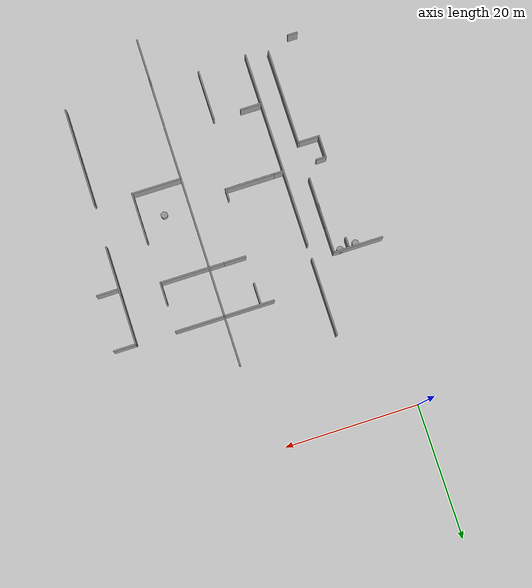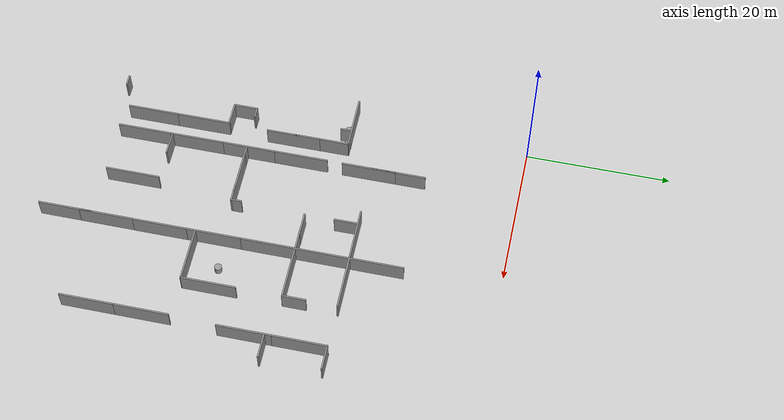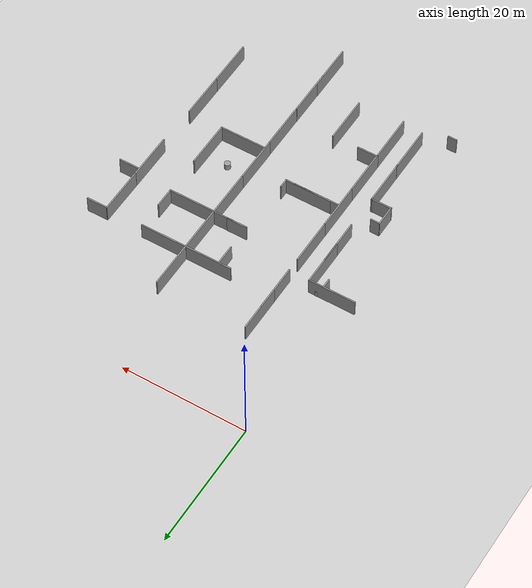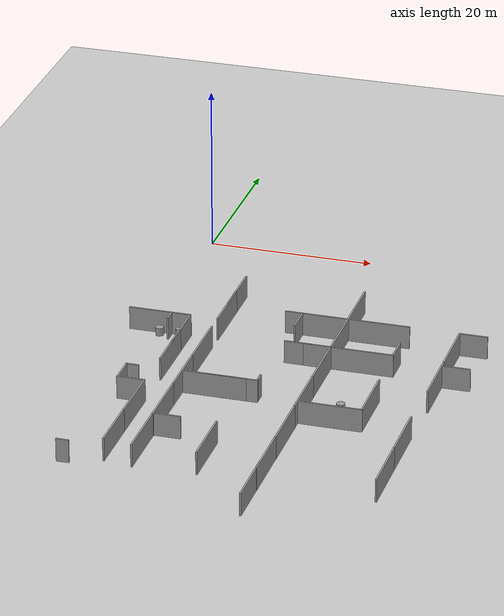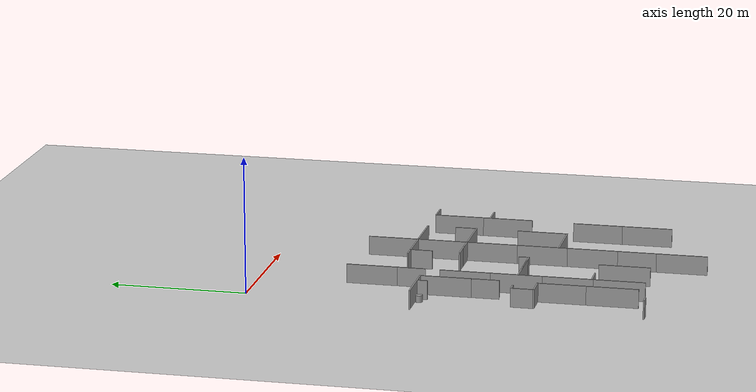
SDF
<sdf version="1.7">
 <world name="default">
  <model name="ground_plane">
   <static>1</static>
   <link name="link">
    <collision name="collision">
     <geometry><plane><normal>0 0 1</normal><size>100 100</size></plane></geometry>
     <surface>
      <contact><collide_bitmask>65535</collide_bitmask></contact>
      <friction><ode><mu>100</mu><mu2>50</mu2></ode></friction>
     </surface>
    </collision>
    <visual name="visual">
     <cast_shadows>0</cast_shadows>
     <geometry><plane><normal>0 0 1</normal><size>100 100</size></plane></geometry>
     <material>
      <script><uri>file://media/materials/scripts/gazebo.material</uri><name>Gazebo/Grey</name></script>
     </material>
    </visual>
   </link>
  </model>
  <model name="grey_wall_clone_0_clone_0_clone_0">
   <static>1</static>
   <link name="link">
    <pose>0 0 1.4 0 -0 0</pose>
    <collision name="collision"><geometry><box><size>7.5 0.2 2.8</size></box></geometry></collision>
    <visual name="visual">
     <cast_shadows>0</cast_shadows>
     <geometry><box><size>7.5 0.2 2.8</size></box></geometry>
     <material>
      <script>
       <uri>model://grey_wall/materials/scripts</uri>
       <uri>model://grey_wall/materials/textures</uri>
       <name>vrc/grey_wall</name>
      </script>
     </material>
    </visual>
   </link>
   <pose>1.22377 -24.4572 0 0 -0 0</pose>
  </model>
  <model name="grey_wall_clone_2_clone_2_clone_0">
   <static>1</static>
   <link name="link">
    <pose>0 0 1.4 0 -0 0</pose>
    <collision name="collision"><geometry><box><size>7.5 0.2 2.8</size></box></geometry></collision>
    <visual name="visual">
     <cast_shadows>0</cast_shadows>
     <geometry><box><size>7.5 0.2 2.8</size></box></geometry>
     <material>
      <script>
       <uri>model://grey_wall/materials/scripts</uri>
       <uri>model://grey_wall/materials/textures</uri>
       <name>vrc/grey_wall</name>
      </script>
     </material>
    </visual>
   </link>
   <pose>4.8782 -28.183 0 0 0 -1.5708</pose>
  </model>
  <model name="grey_wall_clone_2_clone_2_clone_1">
   <static>1</static>
   <link name="link">
    <pose>0 0 1.4 0 -0 0</pose>
    <collision name="collision"><geometry><box><size>7.5 0.2 2.8</size></box></geometry></collision>
    <visual name="visual">
     <cast_shadows>0</cast_shadows>
     <geometry><box><size>7.5 0.2 2.8</size></box></geometry>
     <material>
      <script>
       <uri>model://grey_wall/materials/scripts</uri>
       <uri>model://grey_wall/materials/textures</uri>
       <name>vrc/grey_wall</name>
      </script>
     </material>
    </visual>
   </link>
   <pose>4.89039 -32.2157 0 0 0 -1.5708</pose>
  </model>
  <model name="grey_wall_clone_2_clone_2_clone_1_clone">
   <static>1</static>
   <link name="link">
    <pose>0 0 1.4 0 -0 0</pose>
    <collision name="collision"><geometry><box><size>7.5 0.2 2.8</size></box></geometry></collision>
    <visual name="visual">
     <cast_shadows>0</cast_shadows>
     <geometry><box><size>7.5 0.2 2.8</size></box></geometry>
     <material>
      <script>
       <uri>model://grey_wall/materials/scripts</uri>
       <uri>model://grey_wall/materials/textures</uri>
       <name>vrc/grey_wall</name>
      </script>
     </material>
    </visual>
   </link>
   <pose>4.79063 -45.0974 0 0 0 -1.5708</pose>
  </model>
  <model name="grey_wall_clone_2_clone_2_clone_1_clone_0">
   <static>1</static>
   <link name="link">
    <pose>0 0 1.4 0 -0 0</pose>
    <collision name="collision"><geometry><box><size>7.5 0.2 2.8</size></box></geometry></collision>
    <visual name="visual">
     <cast_shadows>0</cast_shadows>
     <geometry><box><size>7.5 0.2 2.8</size></box></geometry>
     <material>
      <script>
       <uri>model://grey_wall/materials/scripts</uri>
       <uri>model://grey_wall/materials/textures</uri>
       <name>vrc/grey_wall</name>
      </script>
     </material>
    </visual>
   </link>
   <pose>4.78468 -52.1739 0 0 0 -1.5708</pose>
  </model>
  <model name="grey_wall_clone_2_clone_clone_clone_0_clone">
   <static>1</static>
   <link name="link">
    <pose>0 0 1.4 0 -0 0</pose>
    <collision name="collision"><geometry><box><size>7.5 0.2 2.8</size></box></geometry></collision>
    <visual name="visual">
     <cast_shadows>0</cast_shadows>
     <geometry><box><size>7.5 0.2 2.8</size></box></geometry>
     <material>
      <script>
       <uri>model://grey_wall/materials/scripts</uri>
       <uri>model://grey_wall/materials/textures</uri>
       <name>vrc/grey_wall</name>
      </script>
     </material>
    </visual>
   </link>
   <pose>8.18142 -16.6644 0 0 0 -1.5708</pose>
  </model>
  <model name="grey_wall_clone_2_clone_clone_clone_0_clone_0">
   <static>1</static>
   <link name="link">
    <pose>0 0 1.4 0 -0 0</pose>
    <collision name="collision"><geometry><box><size>7.5 0.2 2.8</size></box></geometry></collision>
    <visual name="visual">
     <cast_shadows>0</cast_shadows>
     <geometry><box><size>7.5 0.2 2.8</size></box></geometry>
     <material>
      <script>
       <uri>model://grey_wall/materials/scripts</uri>
       <uri>model://grey_wall/materials/textures</uri>
       <name>vrc/grey_wall</name>
      </script>
     </material>
    </visual>
   </link>
   <pose>8.18766 -20.8291 0 0 0 -1.5708</pose>
  </model>
  <model name="grey_wall_clone_2_clone_clone_clone_0_clone_1">
   <static>1</static>
   <link name="link">
    <pose>0 0 1.4 0 -0 0</pose>
    <collision name="collision"><geometry><box><size>7.5 0.2 2.8</size></box></geometry></collision>
    <visual name="visual">
     <cast_shadows>0</cast_shadows>
     <geometry><box><size>7.5 0.2 2.8</size></box></geometry>
     <material>
      <script>
       <uri>model://grey_wall/materials/scripts</uri>
       <uri>model://grey_wall/materials/textures</uri>
       <name>vrc/grey_wall</name>
      </script>
     </material>
    </visual>
   </link>
   <pose>8.15864 -30.385 0 0 0 -1.5708</pose>
  </model>
  <model name="grey_wall_clone_2_clone_clone_clone_1_clone_clone">
   <static>1</static>
   <link name="link">
    <pose>0 0 1.4 0 -0 0</pose>
    <collision name="collision"><geometry><box><size>7.5 0.2 2.8</size></box></geometry></collision>
    <visual name="visual">
     <cast_shadows>0</cast_shadows>
     <geometry><box><size>7.5 0.2 2.8</size></box></geometry>
     <material>
      <script>
       <uri>model://grey_wall/materials/scripts</uri>
       <uri>model://grey_wall/materials/textures</uri>
       <name>vrc/grey_wall</name>
      </script>
     </material>
    </visual>
   </link>
   <pose>22.7161 -16.7659 0 0 0 -1.5708</pose>
  </model>
  <model name="grey_wall_clone_1_clone_clone_clone_0">
   <static>1</static>
   <link name="link">
    <pose>0 0 1.4 0 -0 0</pose>
    <collision name="collision"><geometry><box><size>7.5 0.2 2.8</size></box></geometry></collision>
    <visual name="visual">
     <cast_shadows>0</cast_shadows>
     <geometry><box><size>7.5 0.2 2.8</size></box></geometry>
     <material>
      <script>
       <uri>model://grey_wall/materials/scripts</uri>
       <uri>model://grey_wall/materials/textures</uri>
       <name>vrc/grey_wall</name>
      </script>
     </material>
    </visual>
   </link>
   <pose>18.9634 -20.4211 0 0 -0 0</pose>
  </model>
  <model name="grey_wall_clone_2_clone_clone_clone_1_clone_clone_clone">
   <static>1</static>
   <link name="link">
    <pose>0 0 1.4 0 -0 0</pose>
    <collision name="collision"><geometry><box><size>7.5 0.2 2.8</size></box></geometry></collision>
    <visual name="visual">
     <cast_shadows>0</cast_shadows>
     <geometry><box><size>7.5 0.2 2.8</size></box></geometry>
     <material>
      <script>
       <uri>model://grey_wall/materials/scripts</uri>
       <uri>model://grey_wall/materials/textures</uri>
       <name>vrc/grey_wall</name>
      </script>
     </material>
    </visual>
   </link>
   <pose>22.7175 -24.1341 0 0 0 -1.5708</pose>
  </model>
  <model name="grey_wall_clone_2_clone_clone_clone_0_clone_1_clone">
   <static>1</static>
   <link name="link">
    <pose>0 0 1.4 0 -0 0</pose>
    <collision name="collision"><geometry><box><size>7.5 0.2 2.8</size></box></geometry></collision>
    <visual name="visual">
     <cast_shadows>0</cast_shadows>
     <geometry><box><size>7.5 0.2 2.8</size></box></geometry>
     <material>
      <script>
       <uri>model://grey_wall/materials/scripts</uri>
       <uri>model://grey_wall/materials/textures</uri>
       <name>vrc/grey_wall</name>
      </script>
     </material>
    </visual>
   </link>
   <pose>8.15614 -37.8124 0 0 0 -1.5708</pose>
  </model>
  <model name="grey_wall_clone_2_clone_clone_clone_0_clone_1_clone_0">
   <static>1</static>
   <link name="link">
    <pose>0 0 1.4 0 -0 0</pose>
    <collision name="collision"><geometry><box><size>7.5 0.2 2.8</size></box></geometry></collision>
    <visual name="visual">
     <cast_shadows>0</cast_shadows>
     <geometry><box><size>7.5 0.2 2.8</size></box></geometry>
     <material>
      <script>
       <uri>model://grey_wall/materials/scripts</uri>
       <uri>model://grey_wall/materials/textures</uri>
       <name>vrc/grey_wall</name>
      </script>
     </material>
    </visual>
   </link>
   <pose>8.15923 -45.1928 0 0 0 -1.5708</pose>
  </model>
  <model name="grey_wall_clone_2_clone_clone_clone_0_clone_1_clone_1">
   <static>1</static>
   <link name="link">
    <pose>0 0 1.4 0 -0 0</pose>
    <collision name="collision"><geometry><box><size>7.5 0.2 2.8</size></box></geometry></collision>
    <visual name="visual">
     <cast_shadows>0</cast_shadows>
     <geometry><box><size>7.5 0.2 2.8</size></box></geometry>
     <material>
      <script>
       <uri>model://grey_wall/materials/scripts</uri>
       <uri>model://grey_wall/materials/textures</uri>
       <name>vrc/grey_wall</name>
      </script>
     </material>
    </visual>
   </link>
   <pose>8.15673 -52.6567 0 0 0 -1.5708</pose>
  </model>
  <model name="grey_wall_clone_1_clone_clone_clone_0_clone_clone_clone">
   <static>1</static>
   <link name="link">
    <pose>0 0 1.4 0 -0 0</pose>
    <collision name="collision"><geometry><box><size>7.5 0.2 2.8</size></box></geometry></collision>
    <visual name="visual">
     <cast_shadows>0</cast_shadows>
     <geometry><box><size>7.5 0.2 2.8</size></box></geometry>
     <material>
      <script>
       <uri>model://grey_wall/materials/scripts</uri>
       <uri>model://grey_wall/materials/textures</uri>
       <name>vrc/grey_wall</name>
      </script>
     </material>
    </visual>
   </link>
   <pose>11.9813 -38.0567 0 0 -0 0</pose>
  </model>
  <model name="grey_wall_clone_1_clone_clone_clone_0_clone_clone_clone_0">
   <static>1</static>
   <link name="link">
    <pose>0 0 1.4 0 -0 0</pose>
    <collision name="collision"><geometry><box><size>7.5 0.2 2.8</size></box></geometry></collision>
    <visual name="visual">
     <cast_shadows>0</cast_shadows>
     <geometry><box><size>7.5 0.2 2.8</size></box></geometry>
     <material>
      <script>
       <uri>model://grey_wall/materials/scripts</uri>
       <uri>model://grey_wall/materials/textures</uri>
       <name>vrc/grey_wall</name>
      </script>
     </material>
    </visual>
   </link>
   <pose>13.3319 -38.0452 0 0 -0 0</pose>
  </model>
  <model name="grey_wall_clone_2_clone_clone_clone_0_clone_1_clone_2_clone_0">
   <static>1</static>
   <link name="link">
    <pose>0 0 1.4 0 -0 0</pose>
    <collision name="collision"><geometry><box><size>7.5 0.2 2.8</size></box></geometry></collision>
    <visual name="visual">
     <cast_shadows>0</cast_shadows>
     <geometry><box><size>7.5 0.2 2.8</size></box></geometry>
     <material>
      <script>
       <uri>model://grey_wall/materials/scripts</uri>
       <uri>model://grey_wall/materials/textures</uri>
       <name>vrc/grey_wall</name>
      </script>
     </material>
    </visual>
   </link>
   <pose>15.4843 -52.3376 0 0 0 -1.5708</pose>
  </model>
  <model name="half_grey_wall_clone_0_clone_0_clone">
   <link name="link">
    <pose>0 0 1.4 0 -0 0</pose>
    <inertial>
     <mass>1</mass>
     <inertia><ixx>1</ixx><ixy>0</ixy><ixz>0</ixz><iyy>1</iyy><iyz>0</iyz><izz>1</izz></inertia>
    </inertial>
    <visual name="visual">
     <cast_shadows>0</cast_shadows>
     <geometry><box><size>3.3 0.2 2.8</size></box></geometry>
     <material>
      <script>
       <uri>model://grey_wall/materials/scripts</uri>
       <uri>model://grey_wall/materials/textures</uri>
       <name>vrc/grey_wall</name>
      </script>
      <shader type="pixel"><normal_map>__default__</normal_map></shader>
      <ambient>1 1 1 1</ambient>
      <diffuse>1 1 1 1</diffuse>
      <specular>0 0 0 1</specular>
      <emissive>0 0 0 1</emissive>
     </material>
    </visual>
    <collision name="collision">
     <geometry><box><size>7.5 0.2 2.8</size></box></geometry>
     <surface>
      <friction>
       <ode><mu>1</mu><mu2>1</mu2><fdir1>0 0 0</fdir1><slip1>0</slip1><slip2>0</slip2></ode>
       <torsional>
        <coefficient>1</coefficient>
        <patch_radius>0</patch_radius>
        <surface_radius>0</surface_radius>
        <use_patch_radius>1</use_patch_radius>
        <ode><slip>0</slip></ode>
       </torsional>
      </friction>
      <bounce><restitution_coefficient>0</restitution_coefficient><threshold>1e+06</threshold></bounce>
      <contact>
       <collide_without_contact>0</collide_without_contact>
       <collide_without_contact_bitmask>1</collide_without_contact_bitmask>
       <collide_bitmask>1</collide_bitmask>
       <ode>
        <soft_cfm>0</soft_cfm>
        <soft_erp>0.2</soft_erp>
        <kp>1e+13</kp>
        <kd>1</kd>
        <max_vel>0.01</max_vel>
        <min_depth>0</min_depth>
       </ode>
       <bullet>
        <split_impulse>1</split_impulse>
        <split_impulse_penetration_threshold>-0.01</split_impulse_penetration_threshold>
        <soft_cfm>0</soft_cfm>
        <soft_erp>0.2</soft_erp>
        <kp>1e+13</kp>
        <kd>1</kd>
       </bullet>
      </contact>
     </surface>
    </collision>
   </link>
   <static>1</static>
   <pose>21.1011 -27.7818 0 0 -0 0</pose>
  </model>
  <model name="grey_wall_clone_2_clone_clone_clone_1_clone_clone_clone_clone">
   <static>1</static>
   <link name="link">
    <pose>0 0 1.4 0 -0 0</pose>
    <collision name="collision"><geometry><box><size>7.5 0.2 2.8</size></box></geometry></collision>
    <visual name="visual">
     <cast_shadows>0</cast_shadows>
     <geometry><box><size>7.5 0.2 2.8</size></box></geometry>
     <material>
      <script>
       <uri>model://grey_wall/materials/scripts</uri>
       <uri>model://grey_wall/materials/textures</uri>
       <name>vrc/grey_wall</name>
      </script>
     </material>
    </visual>
   </link>
   <pose>22.6979 -31.6122 0 0 0 -1.5708</pose>
  </model>
  <model name="grey_wall_clone_2_clone_clone_clone_1_clone_clone_clone_clone_0">
   <static>1</static>
   <link name="link">
    <pose>0 0 1.4 0 -0 0</pose>
    <collision name="collision"><geometry><box><size>7.5 0.2 2.8</size></box></geometry></collision>
    <visual name="visual">
     <cast_shadows>0</cast_shadows>
     <geometry><box><size>7.5 0.2 2.8</size></box></geometry>
     <material>
      <script>
       <uri>model://grey_wall/materials/scripts</uri>
       <uri>model://grey_wall/materials/textures</uri>
       <name>vrc/grey_wall</name>
      </script>
     </material>
    </visual>
   </link>
   <pose>22.6979 -39.0461 0 0 0 -1.5708</pose>
  </model>
  <model name="grey_wall_clone_2_clone_clone_clone_1_clone_clone_clone_clone_1">
   <static>1</static>
   <link name="link">
    <pose>0 0 1.4 0 -0 0</pose>
    <collision name="collision"><geometry><box><size>7.5 0.2 2.8</size></box></geometry></collision>
    <visual name="visual">
     <cast_shadows>0</cast_shadows>
     <geometry><box><size>7.5 0.2 2.8</size></box></geometry>
     <material>
      <script>
       <uri>model://grey_wall/materials/scripts</uri>
       <uri>model://grey_wall/materials/textures</uri>
       <name>vrc/grey_wall</name>
      </script>
     </material>
    </visual>
   </link>
   <pose>22.7162 -46.5198 0 0 0 -1.5708</pose>
  </model>
  <model name="grey_wall_clone_2_clone_clone_clone_1_clone_clone_clone_clone_2">
   <static>1</static>
   <link name="link">
    <pose>0 0 1.4 0 -0 0</pose>
    <collision name="collision"><geometry><box><size>7.5 0.2 2.8</size></box></geometry></collision>
    <visual name="visual">
     <cast_shadows>0</cast_shadows>
     <geometry><box><size>7.5 0.2 2.8</size></box></geometry>
     <material>
      <script>
       <uri>model://grey_wall/materials/scripts</uri>
       <uri>model://grey_wall/materials/textures</uri>
       <name>vrc/grey_wall</name>
      </script>
     </material>
    </visual>
   </link>
   <pose>22.6966 -53.9959 0 0 0 -1.5708</pose>
  </model>
  <model name="grey_wall_clone_2_clone_clone_clone_1_clone_clone_clone_clone_3">
   <static>1</static>
   <link name="link">
    <pose>0 0 1.4 0 -0 0</pose>
    <collision name="collision"><geometry><box><size>7.5 0.2 2.8</size></box></geometry></collision>
    <visual name="visual">
     <cast_shadows>0</cast_shadows>
     <geometry><box><size>7.5 0.2 2.8</size></box></geometry>
     <material>
      <script>
       <uri>model://grey_wall/materials/scripts</uri>
       <uri>model://grey_wall/materials/textures</uri>
       <name>vrc/grey_wall</name>
      </script>
     </material>
    </visual>
   </link>
   <pose>22.6804 -59.7062 0 0 0 -1.5708</pose>
  </model>
  <model name="grey_wall_clone_1_clone_clone_clone_clone_clone_0">
   <static>1</static>
   <link name="link">
    <pose>0 0 1.4 0 -0 0</pose>
    <collision name="collision"><geometry><box><size>7.5 0.2 2.8</size></box></geometry></collision>
    <visual name="visual">
     <cast_shadows>0</cast_shadows>
     <geometry><box><size>7.5 0.2 2.8</size></box></geometry>
     <material>
      <script>
       <uri>model://grey_wall/materials/scripts</uri>
       <uri>model://grey_wall/materials/textures</uri>
       <name>vrc/grey_wall</name>
      </script>
     </material>
    </visual>
   </link>
   <pose>26.363 -20.4054 0 0 -0 0</pose>
  </model>
  <model name="grey_wall_clone_1_clone_clone_clone_clone_clone_1">
   <static>1</static>
   <link name="link">
    <pose>0 0 1.4 0 -0 0</pose>
    <collision name="collision"><geometry><box><size>7.5 0.2 2.8</size></box></geometry></collision>
    <visual name="visual">
     <cast_shadows>0</cast_shadows>
     <geometry><box><size>7.5 0.2 2.8</size></box></geometry>
     <material>
      <script>
       <uri>model://grey_wall/materials/scripts</uri>
       <uri>model://grey_wall/materials/textures</uri>
       <name>vrc/grey_wall</name>
      </script>
     </material>
    </visual>
   </link>
   <pose>26.385 -27.8158 0 0 -0 0</pose>
  </model>
  <model name="grey_wall_clone_1_clone_clone_clone_clone_clone_1_clone">
   <static>1</static>
   <link name="link">
    <pose>0 0 1.4 0 -0 0</pose>
    <collision name="collision"><geometry><box><size>7.5 0.2 2.8</size></box></geometry></collision>
    <visual name="visual">
     <cast_shadows>0</cast_shadows>
     <geometry><box><size>7.5 0.2 2.8</size></box></geometry>
     <material>
      <script>
       <uri>model://grey_wall/materials/scripts</uri>
       <uri>model://grey_wall/materials/textures</uri>
       <name>vrc/grey_wall</name>
      </script>
     </material>
    </visual>
   </link>
   <pose>26.4506 -41.5356 0 0 -0 0</pose>
  </model>
  <model name="grey_wall_clone_2_clone_clone_clone_1_clone_clone_clone_clone_0_clone">
   <static>1</static>
   <link name="link">
    <pose>0 0 1.4 0 -0 0</pose>
    <collision name="collision"><geometry><box><size>7.5 0.2 2.8</size></box></geometry></collision>
    <visual name="visual">
     <cast_shadows>0</cast_shadows>
     <geometry><box><size>7.5 0.2 2.8</size></box></geometry>
     <material>
      <script>
       <uri>model://grey_wall/materials/scripts</uri>
       <uri>model://grey_wall/materials/textures</uri>
       <name>vrc/grey_wall</name>
      </script>
     </material>
    </visual>
   </link>
   <pose>30.1027 -37.8055 0 0 0 -1.5708</pose>
  </model>
  <model name="grey_wall_clone_2_clone_clone_clone_1_clone_clone_0_clone_clone_clone_clone">
   <static>1</static>
   <link name="link">
    <pose>0 0 1.4 0 -0 0</pose>
    <collision name="collision"><geometry><box><size>7.5 0.2 2.8</size></box></geometry></collision>
    <visual name="visual">
     <cast_shadows>0</cast_shadows>
     <geometry><box><size>7.5 0.2 2.8</size></box></geometry>
     <material>
      <script>
       <uri>model://grey_wall/materials/scripts</uri>
       <uri>model://grey_wall/materials/textures</uri>
       <name>vrc/grey_wall</name>
      </script>
     </material>
    </visual>
   </link>
   <pose>36.0086 -24.0781 0 0 0 -1.5708</pose>
  </model>
  <model name="grey_wall_clone_2_clone_clone_clone_1_clone_clone_0_clone_clone_clone_clone_0">
   <static>1</static>
   <link name="link">
    <pose>0 0 1.4 0 -0 0</pose>
    <collision name="collision"><geometry><box><size>7.5 0.2 2.8</size></box></geometry></collision>
    <visual name="visual">
     <cast_shadows>0</cast_shadows>
     <geometry><box><size>7.5 0.2 2.8</size></box></geometry>
     <material>
      <script>
       <uri>model://grey_wall/materials/scripts</uri>
       <uri>model://grey_wall/materials/textures</uri>
       <name>vrc/grey_wall</name>
      </script>
     </material>
    </visual>
   </link>
   <pose>36.0008 -31.4951 0 0 0 -1.5708</pose>
  </model>
  <model name="grey_wall_clone_2_clone_clone_clone_1_clone_clone_0_clone_clone_clone_clone_1">
   <static>1</static>
   <link name="link">
    <pose>0 0 1.4 0 -0 0</pose>
    <collision name="collision"><geometry><box><size>7.5 0.2 2.8</size></box></geometry></collision>
    <visual name="visual">
     <cast_shadows>0</cast_shadows>
     <geometry><box><size>7.5 0.2 2.8</size></box></geometry>
     <material>
      <script>
       <uri>model://grey_wall/materials/scripts</uri>
       <uri>model://grey_wall/materials/textures</uri>
       <name>vrc/grey_wall</name>
      </script>
     </material>
    </visual>
   </link>
   <pose>35.7748 -45.3419 0 0 0 -1.5708</pose>
  </model>
  <model name="grey_wall_clone_2_clone_clone_clone_1_clone_clone_0_clone_clone_clone_clone_2">
   <static>1</static>
   <link name="link">
    <pose>0 0 1.4 0 -0 0</pose>
    <collision name="collision"><geometry><box><size>7.5 0.2 2.8</size></box></geometry></collision>
    <visual name="visual">
     <cast_shadows>0</cast_shadows>
     <geometry><box><size>7.5 0.2 2.8</size></box></geometry>
     <material>
      <script>
       <uri>model://grey_wall/materials/scripts</uri>
       <uri>model://grey_wall/materials/textures</uri>
       <name>vrc/grey_wall</name>
      </script>
     </material>
    </visual>
   </link>
   <pose>35.7737 -52.7578 0 0 0 -1.5708</pose>
  </model>
  <model name="half_wall_clone_0_clone_clone">
   <link name="link">
    <pose>0 0 1.4 0 -0 0</pose>
    <inertial>
     <mass>1</mass>
     <inertia><ixx>1</ixx><ixy>0</ixy><ixz>0</ixz><iyy>1</iyy><iyz>0</iyz><izz>1</izz></inertia>
    </inertial>
    <visual name="visual">
     <cast_shadows>0</cast_shadows>
     <geometry><box><size>1.5 0.2 2.8</size></box></geometry>
     <material>
      <script>
       <uri>model://grey_wall/materials/scripts</uri>
       <uri>model://grey_wall/materials/textures</uri>
       <name>vrc/grey_wall</name>
      </script>
      <shader type="pixel"><normal_map>__default__</normal_map></shader>
      <ambient>1 1 1 1</ambient>
      <diffuse>1 1 1 1</diffuse>
      <specular>0 0 0 1</specular>
      <emissive>0 0 0 1</emissive>
     </material>
    </visual>
    <collision name="collision">
     <geometry><box><size>1.5 0.2 2.8</size></box></geometry>
     <surface>
      <friction>
       <ode><mu>1</mu><mu2>1</mu2><fdir1>0 0 0</fdir1><slip1>0</slip1><slip2>0</slip2></ode>
       <torsional>
        <coefficient>1</coefficient>
        <patch_radius>0</patch_radius>
        <surface_radius>0</surface_radius>
        <use_patch_radius>1</use_patch_radius>
        <ode><slip>0</slip></ode>
       </torsional>
      </friction>
      <bounce><restitution_coefficient>0</restitution_coefficient><threshold>1e+06</threshold></bounce>
      <contact>
       <collide_without_contact>0</collide_without_contact>
       <collide_without_contact_bitmask>1</collide_without_contact_bitmask>
       <collide_bitmask>1</collide_bitmask>
       <ode>
        <soft_cfm>0</soft_cfm>
        <soft_erp>0.2</soft_erp>
        <kp>1e+13</kp>
        <kd>1</kd>
        <max_vel>0.01</max_vel>
        <min_depth>0</min_depth>
       </ode>
       <bullet>
        <split_impulse>1</split_impulse>
        <split_impulse_penetration_threshold>-0.01</split_impulse_penetration_threshold>
        <soft_cfm>0</soft_cfm>
        <soft_erp>0.2</soft_erp>
        <kp>1e+13</kp>
        <kd>1</kd>
       </bullet>
      </contact>
     </surface>
    </collision>
   </link>
   <static>1</static>
   <pose>2.59655 -25.2545 0 0 0 -1.5708</pose>
  </model>
  <model name="half_wall_clone_0_clone_clone_clone">
   <link name="link">
    <pose>0 0 1.4 0 -0 0</pose>
    <inertial>
     <mass>1</mass>
     <inertia><ixx>1</ixx><ixy>0</ixy><ixz>0</ixz><iyy>1</iyy><iyz>0</iyz><izz>1</izz></inertia>
    </inertial>
    <visual name="visual">
     <cast_shadows>0</cast_shadows>
     <geometry><box><size>1.5 0.2 2.8</size></box></geometry>
     <material>
      <script>
       <uri>model://grey_wall/materials/scripts</uri>
       <uri>model://grey_wall/materials/textures</uri>
       <name>vrc/grey_wall</name>
      </script>
      <shader type="pixel"><normal_map>__default__</normal_map></shader>
      <ambient>1 1 1 1</ambient>
      <diffuse>1 1 1 1</diffuse>
      <specular>0 0 0 1</specular>
      <emissive>0 0 0 1</emissive>
     </material>
    </visual>
    <collision name="collision">
     <geometry><box><size>1.5 0.2 2.8</size></box></geometry>
     <surface>
      <friction>
       <ode><mu>1</mu><mu2>1</mu2><fdir1>0 0 0</fdir1><slip1>0</slip1><slip2>0</slip2></ode>
       <torsional>
        <coefficient>1</coefficient>
        <patch_radius>0</patch_radius>
        <surface_radius>0</surface_radius>
        <use_patch_radius>1</use_patch_radius>
        <ode><slip>0</slip></ode>
       </torsional>
      </friction>
      <bounce><restitution_coefficient>0</restitution_coefficient><threshold>1e+06</threshold></bounce>
      <contact>
       <collide_without_contact>0</collide_without_contact>
       <collide_without_contact_bitmask>1</collide_without_contact_bitmask>
       <collide_bitmask>1</collide_bitmask>
       <ode>
        <soft_cfm>0</soft_cfm>
        <soft_erp>0.2</soft_erp>
        <kp>1e+13</kp>
        <kd>1</kd>
        <max_vel>0.01</max_vel>
        <min_depth>0</min_depth>
       </ode>
       <bullet>
        <split_impulse>1</split_impulse>
        <split_impulse_penetration_threshold>-0.01</split_impulse_penetration_threshold>
        <soft_cfm>0</soft_cfm>
        <soft_erp>0.2</soft_erp>
        <kp>1e+13</kp>
        <kd>1</kd>
       </bullet>
      </contact>
     </surface>
    </collision>
   </link>
   <static>1</static>
   <pose>2.34649 -38.2193 0 0 -0 3.14159</pose>
  </model>
  <model name="fixed_half_clone_5_clone">
   <link name="link">
    <pose>0 0 1.4 0 -0 0</pose>
    <inertial>
     <mass>1</mass>
     <inertia><ixx>1</ixx><ixy>0</ixy><ixz>0</ixz><iyy>1</iyy><iyz>0</iyz><izz>1</izz></inertia>
    </inertial>
    <visual name="visual">
     <cast_shadows>0</cast_shadows>
     <geometry><box><size>3.3 0.2 2.8</size></box></geometry>
     <material>
      <script>
       <uri>model://grey_wall/materials/scripts</uri>
       <uri>model://grey_wall/materials/textures</uri>
       <name>vrc/grey_wall</name>
      </script>
      <shader type="pixel"><normal_map>__default__</normal_map></shader>
      <ambient>1 1 1 1</ambient>
      <diffuse>1 1 1 1</diffuse>
      <specular>0 0 0 1</specular>
      <emissive>0 0 0 1</emissive>
     </material>
    </visual>
    <collision name="collision">
     <geometry><box><size>3.3 0.2 2.8</size></box></geometry>
     <surface>
      <friction>
       <ode><mu>1</mu><mu2>1</mu2><fdir1>0 0 0</fdir1><slip1>0</slip1><slip2>0</slip2></ode>
       <torsional>
        <coefficient>1</coefficient>
        <patch_radius>0</patch_radius>
        <surface_radius>0</surface_radius>
        <use_patch_radius>1</use_patch_radius>
        <ode><slip>0</slip></ode>
       </torsional>
      </friction>
      <bounce><restitution_coefficient>0</restitution_coefficient><threshold>1e+06</threshold></bounce>
      <contact>
       <collide_without_contact>0</collide_without_contact>
       <collide_without_contact_bitmask>1</collide_without_contact_bitmask>
       <collide_bitmask>1</collide_bitmask>
       <ode>
        <soft_cfm>0</soft_cfm>
        <soft_erp>0.2</soft_erp>
        <kp>1e+13</kp>
        <kd>1</kd>
        <max_vel>0.01</max_vel>
        <min_depth>0</min_depth>
       </ode>
       <bullet>
        <split_impulse>1</split_impulse>
        <split_impulse_penetration_threshold>-0.01</split_impulse_penetration_threshold>
        <soft_cfm>0</soft_cfm>
        <soft_erp>0.2</soft_erp>
        <kp>1e+13</kp>
        <kd>1</kd>
       </bullet>
      </contact>
     </surface>
    </collision>
   </link>
   <static>1</static>
   <pose>1.63698 -39.7813 0 0 0 -1.5708</pose>
  </model>
  <model name="half_wall_clone_0_clone_clone_clone_clone_clone">
   <link name="link">
    <pose>0 0 1.4 0 -0 0</pose>
    <inertial>
     <mass>1</mass>
     <inertia><ixx>1</ixx><ixy>0</ixy><ixz>0</ixz><iyy>1</iyy><iyz>0</iyz><izz>1</izz></inertia>
    </inertial>
    <visual name="visual">
     <cast_shadows>0</cast_shadows>
     <geometry><box><size>1.5 0.2 2.8</size></box></geometry>
     <material>
      <script>
       <uri>model://grey_wall/materials/scripts</uri>
       <uri>model://grey_wall/materials/textures</uri>
       <name>vrc/grey_wall</name>
      </script>
      <shader type="pixel"><normal_map>__default__</normal_map></shader>
      <ambient>1 1 1 1</ambient>
      <diffuse>1 1 1 1</diffuse>
      <specular>0 0 0 1</specular>
      <emissive>0 0 0 1</emissive>
     </material>
    </visual>
    <collision name="collision">
     <geometry><box><size>1.5 0.2 2.8</size></box></geometry>
     <surface>
      <friction>
       <ode><mu>1</mu><mu2>1</mu2><fdir1>0 0 0</fdir1><slip1>0</slip1><slip2>0</slip2></ode>
       <torsional>
        <coefficient>1</coefficient>
        <patch_radius>0</patch_radius>
        <surface_radius>0</surface_radius>
        <use_patch_radius>1</use_patch_radius>
        <ode><slip>0</slip></ode>
       </torsional>
      </friction>
      <bounce><restitution_coefficient>0</restitution_coefficient><threshold>1e+06</threshold></bounce>
      <contact>
       <collide_without_contact>0</collide_without_contact>
       <collide_without_contact_bitmask>1</collide_without_contact_bitmask>
       <collide_bitmask>1</collide_bitmask>
       <ode>
        <soft_cfm>0</soft_cfm>
        <soft_erp>0.2</soft_erp>
        <kp>1e+13</kp>
        <kd>1</kd>
        <max_vel>0.01</max_vel>
        <min_depth>0</min_depth>
       </ode>
       <bullet>
        <split_impulse>1</split_impulse>
        <split_impulse_penetration_threshold>-0.01</split_impulse_penetration_threshold>
        <soft_cfm>0</soft_cfm>
        <soft_erp>0.2</soft_erp>
        <kp>1e+13</kp>
        <kd>1</kd>
       </bullet>
      </contact>
     </surface>
    </collision>
   </link>
   <static>1</static>
   <pose>0.559143 -57.3348 0 0 -0 3.14159</pose>
  </model>
  <model name="fixed_half_clone_10">
   <link name="link">
    <pose>0 0 1.4 0 -0 0</pose>
    <inertial>
     <mass>1</mass>
     <inertia><ixx>1</ixx><ixy>0</ixy><ixz>0</ixz><iyy>1</iyy><iyz>0</iyz><izz>1</izz></inertia>
    </inertial>
    <visual name="visual">
     <cast_shadows>0</cast_shadows>
     <geometry><box><size>3.3 0.2 2.8</size></box></geometry>
     <material>
      <script>
       <uri>model://grey_wall/materials/scripts</uri>
       <uri>model://grey_wall/materials/textures</uri>
       <name>vrc/grey_wall</name>
      </script>
      <shader type="pixel"><normal_map>__default__</normal_map></shader>
      <ambient>1 1 1 1</ambient>
      <diffuse>1 1 1 1</diffuse>
      <specular>0 0 0 1</specular>
      <emissive>0 0 0 1</emissive>
     </material>
    </visual>
    <collision name="collision">
     <geometry><box><size>3.3 0.2 2.8</size></box></geometry>
     <surface>
      <friction>
       <ode><mu>1</mu><mu2>1</mu2><fdir1>0 0 0</fdir1><slip1>0</slip1><slip2>0</slip2></ode>
       <torsional>
        <coefficient>1</coefficient>
        <patch_radius>0</patch_radius>
        <surface_radius>0</surface_radius>
        <use_patch_radius>1</use_patch_radius>
        <ode><slip>0</slip></ode>
       </torsional>
      </friction>
      <bounce><restitution_coefficient>0</restitution_coefficient><threshold>1e+06</threshold></bounce>
      <contact>
       <collide_without_contact>0</collide_without_contact>
       <collide_without_contact_bitmask>1</collide_without_contact_bitmask>
       <collide_bitmask>1</collide_bitmask>
       <ode>
        <soft_cfm>0</soft_cfm>
        <soft_erp>0.2</soft_erp>
        <kp>1e+13</kp>
        <kd>1</kd>
        <max_vel>0.01</max_vel>
        <min_depth>0</min_depth>
       </ode>
       <bullet>
        <split_impulse>1</split_impulse>
        <split_impulse_penetration_threshold>-0.01</split_impulse_penetration_threshold>
        <soft_cfm>0</soft_cfm>
        <soft_erp>0.2</soft_erp>
        <kp>1e+13</kp>
        <kd>1</kd>
       </bullet>
      </contact>
     </surface>
    </collision>
   </link>
   <static>1</static>
   <pose>17.2338 -22.0546 0 0 0 -1.5708</pose>
  </model>
  <model name="fixed_half_clone_13">
   <link name="link">
    <pose>0 0 1.4 0 -0 0</pose>
    <inertial>
     <mass>1</mass>
     <inertia><ixx>1</ixx><ixy>0</ixy><ixz>0</ixz><iyy>1</iyy><iyz>0</iyz><izz>1</izz></inertia>
    </inertial>
    <visual name="visual">
     <cast_shadows>0</cast_shadows>
     <geometry><box><size>3.3 0.2 2.8</size></box></geometry>
     <material>
      <script>
       <uri>model://grey_wall/materials/scripts</uri>
       <uri>model://grey_wall/materials/textures</uri>
       <name>vrc/grey_wall</name>
      </script>
      <shader type="pixel"><normal_map>__default__</normal_map></shader>
      <ambient>1 1 1 1</ambient>
      <diffuse>1 1 1 1</diffuse>
      <specular>0 0 0 1</specular>
      <emissive>0 0 0 1</emissive>
     </material>
    </visual>
    <collision name="collision">
     <geometry><box><size>3.3 0.2 2.8</size></box></geometry>
     <surface>
      <friction>
       <ode><mu>1</mu><mu2>1</mu2><fdir1>0 0 0</fdir1><slip1>0</slip1><slip2>0</slip2></ode>
       <torsional>
        <coefficient>1</coefficient>
        <patch_radius>0</patch_radius>
        <surface_radius>0</surface_radius>
        <use_patch_radius>1</use_patch_radius>
        <ode><slip>0</slip></ode>
       </torsional>
      </friction>
      <bounce><restitution_coefficient>0</restitution_coefficient><threshold>1e+06</threshold></bounce>
      <contact>
       <collide_without_contact>0</collide_without_contact>
       <collide_without_contact_bitmask>1</collide_without_contact_bitmask>
       <collide_bitmask>1</collide_bitmask>
       <ode>
        <soft_cfm>0</soft_cfm>
        <soft_erp>0.2</soft_erp>
        <kp>1e+13</kp>
        <kd>1</kd>
        <max_vel>0.01</max_vel>
        <min_depth>0</min_depth>
       </ode>
       <bullet>
        <split_impulse>1</split_impulse>
        <split_impulse_penetration_threshold>-0.01</split_impulse_penetration_threshold>
        <soft_cfm>0</soft_cfm>
        <soft_erp>0.2</soft_erp>
        <kp>1e+13</kp>
        <kd>1</kd>
       </bullet>
      </contact>
     </surface>
    </collision>
   </link>
   <static>1</static>
   <pose>30.0427 -26.2506 0 0 0 -1.5708</pose>
  </model>
  <model name="fixed_half_clone_17_clone_0">
   <link name="link">
    <pose>0 0 1.4 0 -0 0</pose>
    <inertial>
     <mass>1</mass>
     <inertia><ixx>1</ixx><ixy>0</ixy><ixz>0</ixz><iyy>1</iyy><iyz>0</iyz><izz>1</izz></inertia>
    </inertial>
    <visual name="visual">
     <cast_shadows>0</cast_shadows>
     <geometry><box><size>3.3 0.2 2.8</size></box></geometry>
     <material>
      <script>
       <uri>model://grey_wall/materials/scripts</uri>
       <uri>model://grey_wall/materials/textures</uri>
       <name>vrc/grey_wall</name>
      </script>
      <shader type="pixel"><normal_map>__default__</normal_map></shader>
      <ambient>1 1 1 1</ambient>
      <diffuse>1 1 1 1</diffuse>
      <specular>0 0 0 1</specular>
      <emissive>0 0 0 1</emissive>
     </material>
    </visual>
    <collision name="collision">
     <geometry><box><size>3.3 0.2 2.8</size></box></geometry>
     <surface>
      <friction>
       <ode><mu>1</mu><mu2>1</mu2><fdir1>0 0 0</fdir1><slip1>0</slip1><slip2>0</slip2></ode>
       <torsional>
        <coefficient>1</coefficient>
        <patch_radius>0</patch_radius>
        <surface_radius>0</surface_radius>
        <use_patch_radius>1</use_patch_radius>
        <ode><slip>0</slip></ode>
       </torsional>
      </friction>
      <bounce><restitution_coefficient>0</restitution_coefficient><threshold>1e+06</threshold></bounce>
      <contact>
       <collide_without_contact>0</collide_without_contact>
       <collide_without_contact_bitmask>1</collide_without_contact_bitmask>
       <collide_bitmask>1</collide_bitmask>
       <ode>
        <soft_cfm>0</soft_cfm>
        <soft_erp>0.2</soft_erp>
        <kp>1e+13</kp>
        <kd>1</kd>
        <max_vel>0.01</max_vel>
        <min_depth>0</min_depth>
       </ode>
       <bullet>
        <split_impulse>1</split_impulse>
        <split_impulse_penetration_threshold>-0.01</split_impulse_penetration_threshold>
        <soft_cfm>0</soft_cfm>
        <soft_erp>0.2</soft_erp>
        <kp>1e+13</kp>
        <kd>1</kd>
       </bullet>
      </contact>
     </surface>
    </collision>
   </link>
   <static>1</static>
   <pose>9.72252 -48.6874 0 0 -0 3.14159</pose>
  </model>
  <model name="fixed_half_clone_17_clone_5">
   <link name="link">
    <pose>0 0 1.4 0 -0 0</pose>
    <inertial>
     <mass>1</mass>
     <inertia><ixx>1</ixx><ixy>0</ixy><ixz>0</ixz><iyy>1</iyy><iyz>0</iyz><izz>1</izz></inertia>
    </inertial>
    <visual name="visual">
     <cast_shadows>0</cast_shadows>
     <geometry><box><size>3.3 0.2 2.8</size></box></geometry>
     <material>
      <script>
       <uri>model://grey_wall/materials/scripts</uri>
       <uri>model://grey_wall/materials/textures</uri>
       <name>vrc/grey_wall</name>
      </script>
      <shader type="pixel"><normal_map>__default__</normal_map></shader>
      <ambient>1 1 1 1</ambient>
      <diffuse>1 1 1 1</diffuse>
      <specular>0 0 0 1</specular>
      <emissive>0 0 0 1</emissive>
     </material>
    </visual>
    <collision name="collision">
     <geometry><box><size>3.3 0.2 2.8</size></box></geometry>
     <surface>
      <friction>
       <ode><mu>1</mu><mu2>1</mu2><fdir1>0 0 0</fdir1><slip1>0</slip1><slip2>0</slip2></ode>
       <torsional>
        <coefficient>1</coefficient>
        <patch_radius>0</patch_radius>
        <surface_radius>0</surface_radius>
        <use_patch_radius>1</use_patch_radius>
        <ode><slip>0</slip></ode>
       </torsional>
      </friction>
      <bounce><restitution_coefficient>0</restitution_coefficient><threshold>1e+06</threshold></bounce>
      <contact>
       <collide_without_contact>0</collide_without_contact>
       <collide_without_contact_bitmask>1</collide_without_contact_bitmask>
       <collide_bitmask>1</collide_bitmask>
       <ode>
        <soft_cfm>0</soft_cfm>
        <soft_erp>0.2</soft_erp>
        <kp>1e+13</kp>
        <kd>1</kd>
        <max_vel>0.01</max_vel>
        <min_depth>0</min_depth>
       </ode>
       <bullet>
        <split_impulse>1</split_impulse>
        <split_impulse_penetration_threshold>-0.01</split_impulse_penetration_threshold>
        <soft_cfm>0</soft_cfm>
        <soft_erp>0.2</soft_erp>
        <kp>1e+13</kp>
        <kd>1</kd>
       </bullet>
      </contact>
     </surface>
    </collision>
   </link>
   <static>1</static>
   <pose>37.7288 -28.7764 0 0 -0 3.14159</pose>
  </model>
  <model name="fixed_half_clone_17_clone_7">
   <link name="link">
    <pose>0 0 1.4 0 -0 0</pose>
    <inertial>
     <mass>1</mass>
     <inertia><ixx>1</ixx><ixy>0</ixy><ixz>0</ixz><iyy>1</iyy><iyz>0</iyz><izz>1</izz></inertia>
    </inertial>
    <visual name="visual">
     <cast_shadows>0</cast_shadows>
     <geometry><box><size>3.3 0.2 2.8</size></box></geometry>
     <material>
      <script>
       <uri>model://grey_wall/materials/scripts</uri>
       <uri>model://grey_wall/materials/textures</uri>
       <name>vrc/grey_wall</name>
      </script>
      <shader type="pixel"><normal_map>__default__</normal_map></shader>
      <ambient>1 1 1 1</ambient>
      <diffuse>1 1 1 1</diffuse>
      <specular>0 0 0 1</specular>
      <emissive>0 0 0 1</emissive>
     </material>
    </visual>
    <collision name="collision">
     <geometry><box><size>3.3 0.2 2.8</size></box></geometry>
     <surface>
      <friction>
       <ode><mu>1</mu><mu2>1</mu2><fdir1>0 0 0</fdir1><slip1>0</slip1><slip2>0</slip2></ode>
       <torsional>
        <coefficient>1</coefficient>
        <patch_radius>0</patch_radius>
        <surface_radius>0</surface_radius>
        <use_patch_radius>1</use_patch_radius>
        <ode><slip>0</slip></ode>
       </torsional>
      </friction>
      <bounce><restitution_coefficient>0</restitution_coefficient><threshold>1e+06</threshold></bounce>
      <contact>
       <collide_without_contact>0</collide_without_contact>
       <collide_without_contact_bitmask>1</collide_without_contact_bitmask>
       <collide_bitmask>1</collide_bitmask>
       <ode>
        <soft_cfm>0</soft_cfm>
        <soft_erp>0.2</soft_erp>
        <kp>1e+13</kp>
        <kd>1</kd>
        <max_vel>0.01</max_vel>
        <min_depth>0</min_depth>
       </ode>
       <bullet>
        <split_impulse>1</split_impulse>
        <split_impulse_penetration_threshold>-0.01</split_impulse_penetration_threshold>
        <soft_cfm>0</soft_cfm>
        <soft_erp>0.2</soft_erp>
        <kp>1e+13</kp>
        <kd>1</kd>
       </bullet>
      </contact>
     </surface>
    </collision>
   </link>
   <static>1</static>
   <pose>37.698 -20.4026 0 0 -0 3.14159</pose>
  </model>
  <model name="fixed_half_clone_18_clone_3">
   <link name="link">
    <pose>0 0 1.4 0 -0 0</pose>
    <inertial>
     <mass>1</mass>
     <inertia><ixx>1</ixx><ixy>0</ixy><ixz>0</ixz><iyy>1</iyy><iyz>0</iyz><izz>1</izz></inertia>
    </inertial>
    <visual name="visual">
     <cast_shadows>0</cast_shadows>
     <geometry><box><size>3.3 0.2 2.8</size></box></geometry>
     <material>
      <script>
       <uri>model://grey_wall/materials/scripts</uri>
       <uri>model://grey_wall/materials/textures</uri>
       <name>vrc/grey_wall</name>
      </script>
      <shader type="pixel"><normal_map>__default__</normal_map></shader>
      <ambient>1 1 1 1</ambient>
      <diffuse>1 1 1 1</diffuse>
      <specular>0 0 0 1</specular>
      <emissive>0 0 0 1</emissive>
     </material>
    </visual>
    <collision name="collision">
     <geometry><box><size>3.3 0.2 2.8</size></box></geometry>
     <surface>
      <friction>
       <ode><mu>1</mu><mu2>1</mu2><fdir1>0 0 0</fdir1><slip1>0</slip1><slip2>0</slip2></ode>
       <torsional>
        <coefficient>1</coefficient>
        <patch_radius>0</patch_radius>
        <surface_radius>0</surface_radius>
        <use_patch_radius>1</use_patch_radius>
        <ode><slip>0</slip></ode>
       </torsional>
      </friction>
      <bounce><restitution_coefficient>0</restitution_coefficient><threshold>1e+06</threshold></bounce>
      <contact>
       <collide_without_contact>0</collide_without_contact>
       <collide_without_contact_bitmask>1</collide_without_contact_bitmask>
       <collide_bitmask>1</collide_bitmask>
       <ode>
        <soft_cfm>0</soft_cfm>
        <soft_erp>0.2</soft_erp>
        <kp>1e+13</kp>
        <kd>1</kd>
        <max_vel>0.01</max_vel>
        <min_depth>0</min_depth>
       </ode>
       <bullet>
        <split_impulse>1</split_impulse>
        <split_impulse_penetration_threshold>-0.01</split_impulse_penetration_threshold>
        <soft_cfm>0</soft_cfm>
        <soft_erp>0.2</soft_erp>
        <kp>1e+13</kp>
        <kd>1</kd>
       </bullet>
      </contact>
     </surface>
    </collision>
   </link>
   <static>1</static>
   <pose>18.8262 -27.7656 0 0 -0 3.14159</pose>
  </model>
  <model name="half_wall_clone_0_clone_clone_clone_9_clone_2">
   <link name="link">
    <pose>0 0 1.4 0 -0 0</pose>
    <inertial>
     <mass>1</mass>
     <inertia><ixx>1</ixx><ixy>0</ixy><ixz>0</ixz><iyy>1</iyy><iyz>0</iyz><izz>1</izz></inertia>
    </inertial>
    <visual name="visual">
     <cast_shadows>0</cast_shadows>
     <geometry><box><size>1.5 0.2 2.8</size></box></geometry>
     <material>
      <script>
       <uri>model://grey_wall/materials/scripts</uri>
       <uri>model://grey_wall/materials/textures</uri>
       <name>vrc/grey_wall</name>
      </script>
      <shader type="pixel"><normal_map>__default__</normal_map></shader>
      <ambient>1 1 1 1</ambient>
      <diffuse>1 1 1 1</diffuse>
      <specular>0 0 0 1</specular>
      <emissive>0 0 0 1</emissive>
     </material>
    </visual>
    <collision name="collision">
     <geometry><box><size>1.5 0.2 2.8</size></box></geometry>
     <surface>
      <friction>
       <ode><mu>1</mu><mu2>1</mu2><fdir1>0 0 0</fdir1><slip1>0</slip1><slip2>0</slip2></ode>
       <torsional>
        <coefficient>1</coefficient>
        <patch_radius>0</patch_radius>
        <surface_radius>0</surface_radius>
        <use_patch_radius>1</use_patch_radius>
        <ode><slip>0</slip></ode>
       </torsional>
      </friction>
      <bounce><restitution_coefficient>0</restitution_coefficient><threshold>1e+06</threshold></bounce>
      <contact>
       <collide_without_contact>0</collide_without_contact>
       <collide_without_contact_bitmask>1</collide_without_contact_bitmask>
       <collide_bitmask>1</collide_bitmask>
       <ode>
        <soft_cfm>0</soft_cfm>
        <soft_erp>0.2</soft_erp>
        <kp>1e+13</kp>
        <kd>1</kd>
        <max_vel>0.01</max_vel>
        <min_depth>0</min_depth>
       </ode>
       <bullet>
        <split_impulse>1</split_impulse>
        <split_impulse_penetration_threshold>-0.01</split_impulse_penetration_threshold>
        <soft_cfm>0</soft_cfm>
        <soft_erp>0.2</soft_erp>
        <kp>1e+13</kp>
        <kd>1</kd>
       </bullet>
      </contact>
     </surface>
    </collision>
   </link>
   <static>1</static>
   <pose>16.9795 -37.3441 0 0 -0 1.57079</pose>
  </model>
  <model name="fixed_half_clone_17_clone_0_clone">
   <link name="link">
    <pose>0 0 1.4 0 -0 0</pose>
    <inertial>
     <mass>1</mass>
     <inertia><ixx>1</ixx><ixy>0</ixy><ixz>0</ixz><iyy>1</iyy><iyz>0</iyz><izz>1</izz></inertia>
    </inertial>
    <visual name="visual">
     <cast_shadows>0</cast_shadows>
     <geometry><box><size>3.3 0.2 2.8</size></box></geometry>
     <material>
      <script>
       <uri>model://grey_wall/materials/scripts</uri>
       <uri>model://grey_wall/materials/textures</uri>
       <name>vrc/grey_wall</name>
      </script>
      <shader type="pixel"><normal_map>__default__</normal_map></shader>
      <ambient>1 1 1 1</ambient>
      <diffuse>1 1 1 1</diffuse>
      <specular>0 0 0 1</specular>
      <emissive>0 0 0 1</emissive>
     </material>
    </visual>
    <collision name="collision">
     <geometry><box><size>3.3 0.2 2.8</size></box></geometry>
     <surface>
      <friction>
       <ode><mu>1</mu><mu2>1</mu2><fdir1>0 0 0</fdir1><slip1>0</slip1><slip2>0</slip2></ode>
       <torsional>
        <coefficient>1</coefficient>
        <patch_radius>0</patch_radius>
        <surface_radius>0</surface_radius>
        <use_patch_radius>1</use_patch_radius>
        <ode><slip>0</slip></ode>
       </torsional>
      </friction>
      <bounce><restitution_coefficient>0</restitution_coefficient><threshold>1e+06</threshold></bounce>
      <contact>
       <collide_without_contact>0</collide_without_contact>
       <collide_without_contact_bitmask>1</collide_without_contact_bitmask>
       <collide_bitmask>1</collide_bitmask>
       <ode>
        <soft_cfm>0</soft_cfm>
        <soft_erp>0.2</soft_erp>
        <kp>1e+13</kp>
        <kd>1</kd>
        <max_vel>0.01</max_vel>
        <min_depth>0</min_depth>
       </ode>
       <bullet>
        <split_impulse>1</split_impulse>
        <split_impulse_penetration_threshold>-0.01</split_impulse_penetration_threshold>
        <soft_cfm>0</soft_cfm>
        <soft_erp>0.2</soft_erp>
        <kp>1e+13</kp>
        <kd>1</kd>
       </bullet>
      </contact>
     </surface>
    </collision>
   </link>
   <static>1</static>
   <pose>3.18075 -41.4618 0 0 -0 3.14159</pose>
  </model>
  <model name="unit_cylinder_0">
   <pose>3.73921 -24.8091 0.499997 0 -0 0</pose>
   <link name="link">
    <inertial>
     <mass>1</mass>
     <inertia><ixx>0.145833</ixx><ixy>0</ixy><ixz>0</ixz><iyy>0.145833</iyy><iyz>0</iyz><izz>0.125</izz></inertia>
    </inertial>
    <collision name="collision">
     <geometry><cylinder><radius>0.5</radius><length>1</length></cylinder></geometry>
    </collision>
    <visual name="visual">
     <geometry><cylinder><radius>0.5</radius><length>1</length></cylinder></geometry>
     <material>
      <script><name>Gazebo/Grey</name><uri>file://media/materials/scripts/gazebo.material</uri></script>
     </material>
    </visual>
   </link>
  </model>
  <model name="unit_cylinder_0_clone">
   <pose>1.31787 -25.0572 0.499996 0 -0 0</pose>
   <link name="link">
    <inertial>
     <mass>1</mass>
     <inertia><ixx>0.145833</ixx><ixy>0</ixy><ixz>0</ixz><iyy>0.145833</iyy><iyz>0</iyz><izz>0.125</izz></inertia>
    </inertial>
    <collision name="collision">
     <geometry><cylinder><radius>0.5</radius><length>1</length></cylinder></geometry>
    </collision>
    <visual name="visual">
     <geometry><cylinder><radius>0.5</radius><length>1</length></cylinder></geometry>
     <material>
      <script><name>Gazebo/Grey</name><uri>file://media/materials/scripts/gazebo.material</uri></script>
     </material>
    </visual>
   </link>
  </model>
  <model name="unit_cylinder_2">
   <pose>26.6004 -37.495 0.499996 1e-06 -0 0</pose>
   <link name="link">
    <inertial>
     <mass>1</mass>
     <inertia><ixx>0.145833</ixx><ixy>0</ixy><ixz>0</ixz><iyy>0.145833</iyy><iyz>0</iyz><izz>0.125</izz></inertia>
    </inertial>
    <collision name="collision">
     <geometry><cylinder><radius>0.5</radius><length>1</length></cylinder></geometry>
    </collision>
    <visual name="visual">
     <geometry><cylinder><radius>0.5</radius><length>1</length></cylinder></geometry>
     <material>
      <script><name>Gazebo/Grey</name><uri>file://media/materials/scripts/gazebo.material</uri></script>
     </material>
    </visual>
   </link>
  </model>
 </world>
</sdf>
